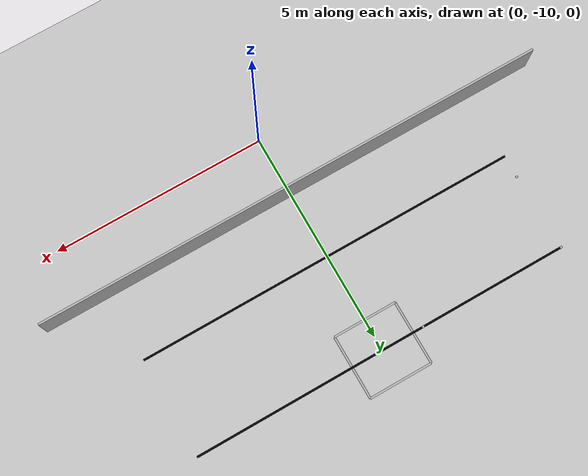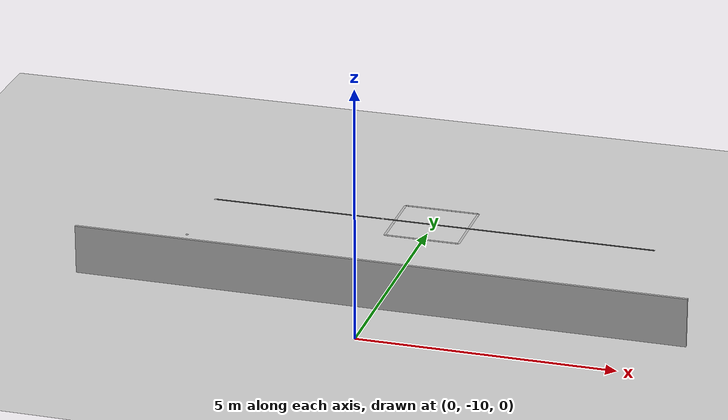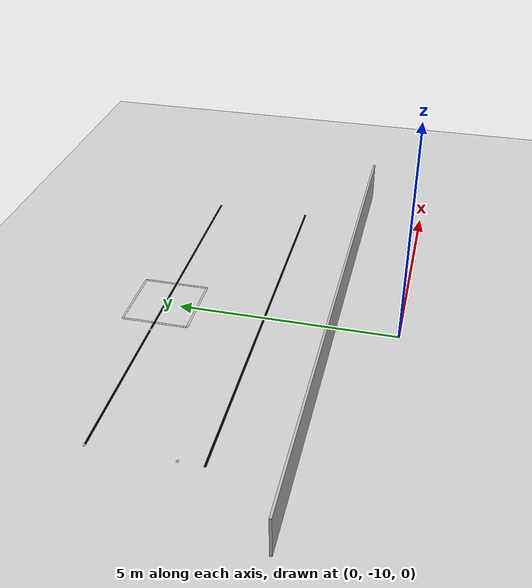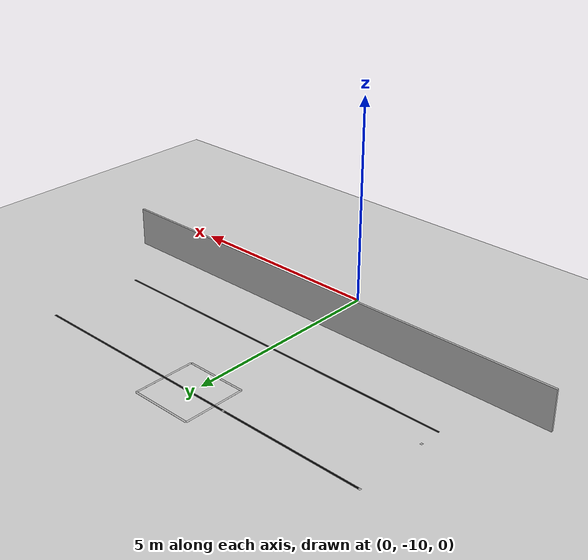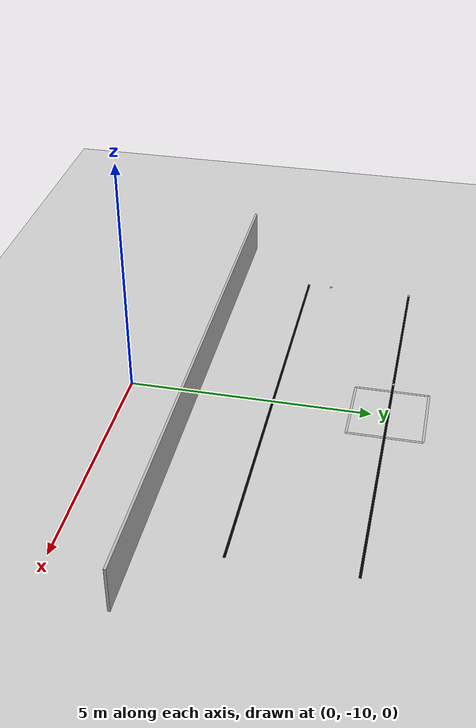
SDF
<sdf version="1.7">
 <world name="default">
  <model name="ground_plane">
   <static>1</static>
   <link name="link">
    <collision name="collision">
     <geometry><plane><normal>0 0 1</normal><size>100 100</size></plane></geometry>
    </collision>
    <visual name="visual">
     <geometry><plane><normal>0 0 1</normal><size>100 100</size></plane></geometry>
     <material>
      <script><name>Gazebo/Grey</name><uri>file://media/materials/scripts/gazebo.material</uri></script>
     </material>
    </visual>
   </link>
  </model>
  <model name="black_line_clone_3">
   <static>1</static>
   <pose>0 -4.6666 0.06 0 -0 0</pose>
   <link name="line_link">
    <visual name="line_visual">
     <geometry><box><size>9 0.05 0.001</size></box></geometry>
     <material><ambient>0 0 0 1</ambient><diffuse>0 0 0 1</diffuse></material>
    </visual>
   </link>
  </model>
  <model name="black_line_clone_4">
   <static>1</static>
   <pose>0 -7 0.06 0 -0 0</pose>
   <link name="line_link">
    <visual name="line_visual">
     <geometry><box><size>9 0.05 0.001</size></box></geometry>
     <material><ambient>0 0 0 1</ambient><diffuse>0 0 0 1</diffuse></material>
    </visual>
   </link>
  </model>
  <model name="cube_test_clone_clone_0">
   <link name="link_0">
    <inertial>
     <mass>1</mass>
     <inertia>
      <ixx>0.166667</ixx>
      <ixy>0</ixy>
      <ixz>0</ixz>
      <iyy>0.166667</iyy>
      <iyz>0</iyz>
      <izz>0.166667</izz>
     </inertia>
    </inertial>
    <visual name="visual">
     <geometry><box><size>0.05 12 1</size></box></geometry>
     <material>
      <lighting>1</lighting>
      <script>
       <uri>model://cube_test/materials/scripts</uri>
       <uri>model://cube_test/materials/textures</uri>
       <name>teknofest_logo</name>
      </script>
      <shader type="pixel"/>
     </material>
    </visual>
    <collision name="collision">
     <geometry><box><size>0.05 12 1</size></box></geometry>
     <surface>
      <friction>
       <ode><mu>1</mu><mu2>1</mu2><fdir1>0 0 0</fdir1><slip1>0</slip1><slip2>0</slip2></ode>
       <torsional>
        <coefficient>1</coefficient>
        <patch_radius>0</patch_radius>
        <surface_radius>0</surface_radius>
        <use_patch_radius>1</use_patch_radius>
        <ode><slip>0</slip></ode>
       </torsional>
      </friction>
      <bounce><restitution_coefficient>0</restitution_coefficient><threshold>1e+06</threshold></bounce>
      <contact>
       <collide_without_contact>0</collide_without_contact>
       <collide_without_contact_bitmask>1</collide_without_contact_bitmask>
       <collide_bitmask>1</collide_bitmask>
       <ode>
        <soft_cfm>0</soft_cfm>
        <soft_erp>0.2</soft_erp>
        <kp>1e+13</kp>
        <kd>1</kd>
        <max_vel>0.01</max_vel>
        <min_depth>0</min_depth>
       </ode>
       <bullet>
        <split_impulse>1</split_impulse>
        <split_impulse_penetration_threshold>-0.01</split_impulse_penetration_threshold>
        <soft_cfm>0</soft_cfm>
        <soft_erp>0.2</soft_erp>
        <kp>1e+13</kp>
        <kd>1</kd>
       </bullet>
      </contact>
     </surface>
    </collision>
   </link>
   <static>1</static>
   <pose>-0.012035 -8.58616 0.46 0 -0 1.571</pose>
  </model>
  <model name="qr_code_zone_d_up">
   <pose>-1 -4.66666 0.061 0 -0 0</pose>
   <link name="link_0">
    <visual name="visual">
     <geometry><box><size>0.05 0.05 0.001</size></box></geometry>
     <material>
      <lighting>1</lighting>
      <script>
       <uri>model://qr_code/materials/scripts</uri>
       <uri>model://qr_code/materials/textures</uri>
       <name>zone_d_up</name>
      </script>
      <shader type="pixel"/>
     </material>
    </visual>
   </link>
   <static>1</static>
  </model>
  <model name="qr_code_intersection_zone_d_station_2">
   <pose>-4.475 -4.666 0.061 0 -0 0</pose>
   <link name="link_0">
    <visual name="visual">
     <geometry><box><size>0.05 0.05 0.001</size></box></geometry>
     <material>
      <lighting>1</lighting>
      <script>
       <uri>model://qr_code/materials/scripts</uri>
       <uri>model://qr_code/materials/textures</uri>
       <name>intersection_zone_d_station_2</name>
      </script>
      <shader type="pixel"/>
     </material>
    </visual>
   </link>
   <static>1</static>
  </model>
  <model name="qr_code_intersection_zone_y_station_2">
   <pose>-4.47547 -6.475 0.061 0 -0 0</pose>
   <link name="link_0">
    <visual name="visual">
     <geometry><box><size>0.05 0.05 0.001</size></box></geometry>
     <material>
      <lighting>1</lighting>
      <script>
       <uri>model://qr_code/materials/scripts</uri>
       <uri>model://qr_code/materials/textures</uri>
       <name>intersection_zone_y_station_2</name>
      </script>
      <shader type="pixel"/>
     </material>
    </visual>
   </link>
   <static>1</static>
  </model>
  <model name="qr_code_zone_y_center">
   <pose>0 -6.999 0.061 0 -0 0</pose>
   <link name="link_0">
    <visual name="visual">
     <geometry><box><size>0.05 0.05 0.001</size></box></geometry>
     <material>
      <lighting>1</lighting>
      <script>
       <uri>model://qr_code/materials/scripts</uri>
       <uri>model://qr_code/materials/textures</uri>
       <name>zone_y_center</name>
      </script>
      <shader type="pixel"/>
     </material>
    </visual>
   </link>
   <static>1</static>
  </model>
  <model name="charging_station_safety_clone">
   <link name="left_side">
    <pose>-0.75 0 0 0 -0 0</pose>
    <visual name="left_side_visual">
     <geometry><box><size>0.05 1.5 0.001</size></box></geometry>
     <material>
      <script>
       <uri>model://charging_station/materials/scripts</uri>
       <uri>model://charging_station/materials/textures</uri>
       <name>safety_tape_texture</name>
      </script>
     </material>
    </visual>
   </link>
   <link name="bottom_side">
    <pose>0 -0.75 0 0 -0 0</pose>
    <visual name="bottom_side_visual">
     <geometry><box><size>1.5 0.05 0.001</size></box></geometry>
     <material>
      <script>
       <uri>model://charging_station/materials/scripts</uri>
       <uri>model://charging_station/materials/textures</uri>
       <name>safety_tape_texture</name>
      </script>
     </material>
    </visual>
   </link>
   <link name="right_side">
    <pose>0.75 0 0 0 -0 0</pose>
    <visual name="right_side_visual">
     <geometry><box><size>0.05 1.5 0.001</size></box></geometry>
     <material>
      <script>
       <uri>model://charging_station/materials/scripts</uri>
       <uri>model://charging_station/materials/textures</uri>
       <name>safety_tape_texture</name>
      </script>
     </material>
    </visual>
   </link>
   <link name="top_side">
    <pose>0 0.75 0 0 -0 0</pose>
    <visual name="top_side_visual">
     <geometry><box><size>1.5 0.05 0.001</size></box></geometry>
     <material>
      <script>
       <uri>model://charging_station/materials/scripts</uri>
       <uri>model://charging_station/materials/textures</uri>
       <name>safety_tape_texture</name>
      </script>
     </material>
    </visual>
   </link>
   <static>1</static>
   <pose>0 -4.6666 0.0596 0 -0 0</pose>
  </model>
 </world>
</sdf>
